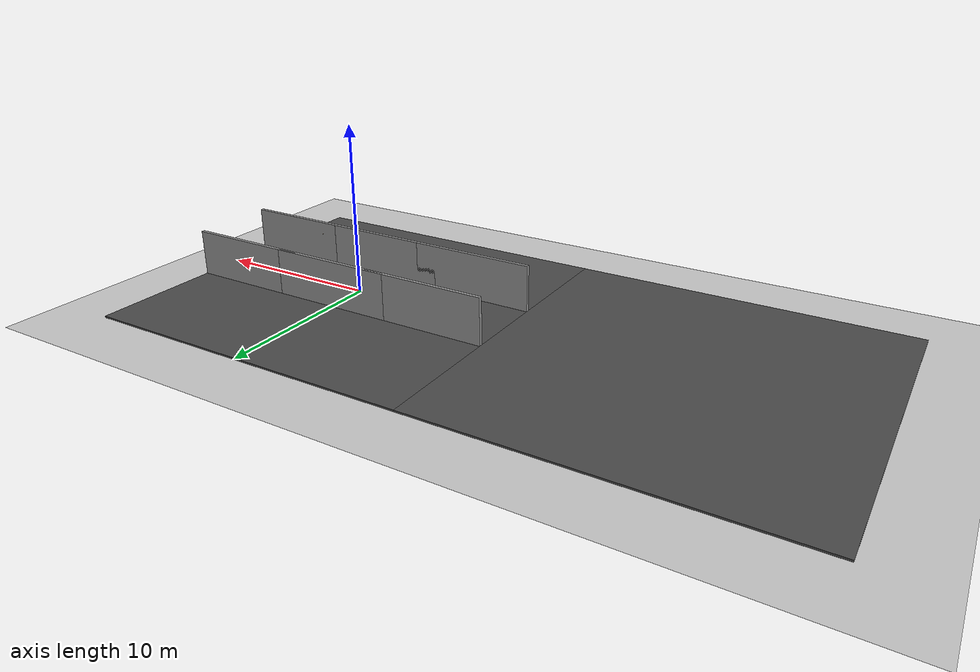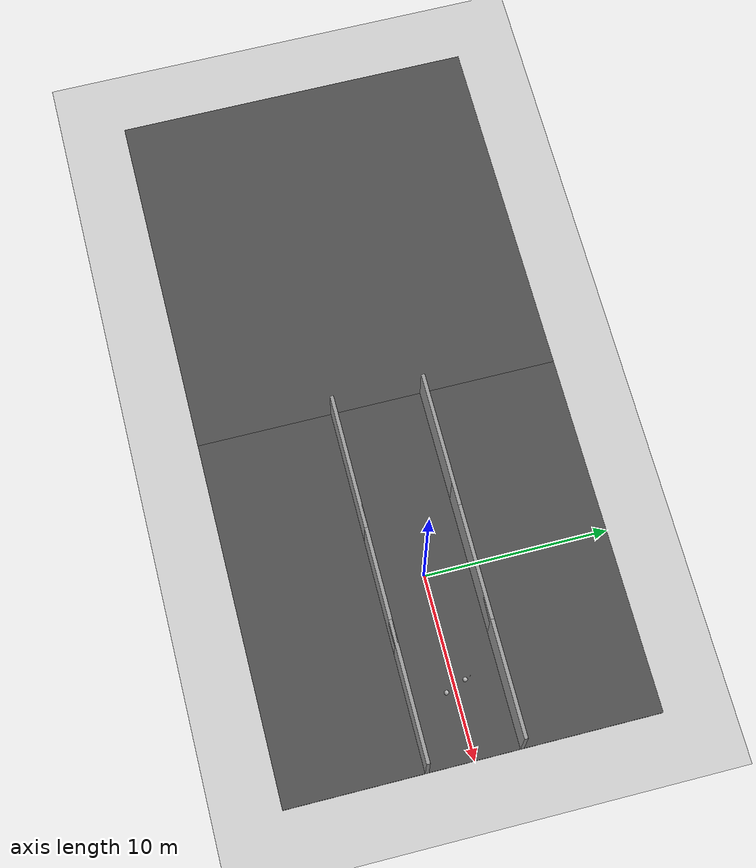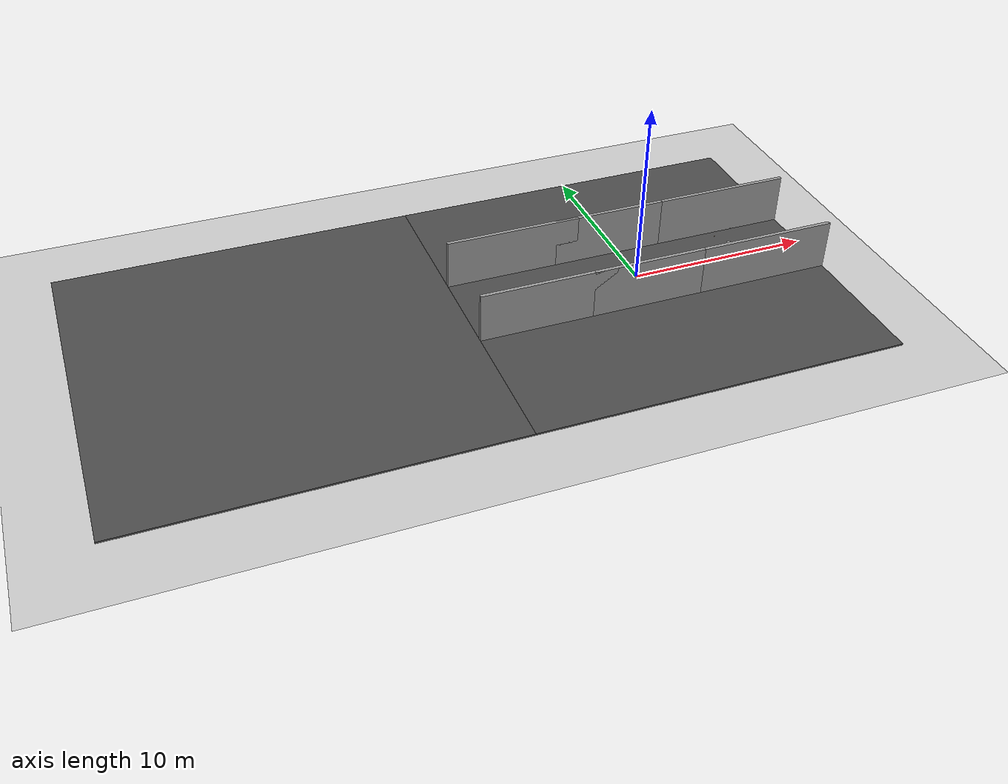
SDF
<sdf version="1.6">
 <world name="default">
  <model name="ground_plane">
   <static>1</static>
   <link name="link">
    <collision name="collision">
     <geometry><plane><normal>0 0 1</normal><size>100 100</size></plane></geometry>
     <surface><friction><ode><mu>100</mu><mu2>50</mu2></ode></friction></surface>
    </collision>
    <visual name="visual">
     <cast_shadows>0</cast_shadows>
     <geometry><plane><normal>0 0 1</normal><size>100 100</size></plane></geometry>
     <material>
      <script><uri>file://media/materials/scripts/gazebo.material</uri><name>Gazebo/Grey</name></script>
     </material>
    </visual>
   </link>
  </model>
  <model name="asphalt_plane">
   <static>1</static>
   <link name="link">
    <collision name="collision"><geometry><box><size>20 20 0.1</size></box></geometry></collision>
    <visual name="visual">
     <cast_shadows>0</cast_shadows>
     <geometry><box><size>20 20 0.1</size></box></geometry>
     <material>
      <script>
       <uri>model://asphalt_plane/materials/scripts</uri>
       <uri>model://asphalt_plane/materials/textures</uri>
       <name>vrc/asphalt</name>
      </script>
     </material>
    </visual>
   </link>
  </model>
  <model name="grey_wall">
   <static>1</static>
   <link name="link">
    <pose>0 0 1.4 0 -0 0</pose>
    <collision name="collision"><geometry><box><size>7.5 0.2 2.8</size></box></geometry></collision>
    <visual name="visual">
     <cast_shadows>0</cast_shadows>
     <geometry><box><size>7.5 0.2 2.8</size></box></geometry>
     <material>
      <script>
       <uri>model://grey_wall/materials/scripts</uri>
       <uri>model://grey_wall/materials/textures</uri>
       <name>vrc/grey_wall</name>
      </script>
     </material>
    </visual>
   </link>
   <pose>-6.25 2.5 0 0 -0 0</pose>
  </model>
  <model name="grey_wall_clone">
   <static>1</static>
   <link name="link">
    <pose>0 0 1.4 0 -0 0</pose>
    <collision name="collision"><geometry><box><size>7.5 0.2 2.8</size></box></geometry></collision>
    <visual name="visual">
     <cast_shadows>0</cast_shadows>
     <geometry><box><size>7.5 0.2 2.8</size></box></geometry>
     <material>
      <script>
       <uri>model://grey_wall/materials/scripts</uri>
       <uri>model://grey_wall/materials/textures</uri>
       <name>vrc/grey_wall</name>
      </script>
     </material>
    </visual>
   </link>
   <pose>0 2.5 0 0 -0 0</pose>
  </model>
  <model name="grey_wall_clone_0">
   <static>1</static>
   <link name="link">
    <pose>0 0 1.4 0 -0 0</pose>
    <collision name="collision"><geometry><box><size>7.5 0.2 2.8</size></box></geometry></collision>
    <visual name="visual">
     <cast_shadows>0</cast_shadows>
     <geometry><box><size>7.5 0.2 2.8</size></box></geometry>
     <material>
      <script>
       <uri>model://grey_wall/materials/scripts</uri>
       <uri>model://grey_wall/materials/textures</uri>
       <name>vrc/grey_wall</name>
      </script>
     </material>
    </visual>
   </link>
   <pose>-6.25 -2.5 0 0 -0 0</pose>
  </model>
  <model name="grey_wall_clone_1">
   <static>1</static>
   <link name="link">
    <pose>0 0 1.4 0 -0 0</pose>
    <collision name="collision"><geometry><box><size>7.5 0.2 2.8</size></box></geometry></collision>
    <visual name="visual">
     <cast_shadows>0</cast_shadows>
     <geometry><box><size>7.5 0.2 2.8</size></box></geometry>
     <material>
      <script>
       <uri>model://grey_wall/materials/scripts</uri>
       <uri>model://grey_wall/materials/textures</uri>
       <name>vrc/grey_wall</name>
      </script>
     </material>
    </visual>
   </link>
   <pose>6.25 2.5 0 0 -0 0</pose>
  </model>
  <model name="grey_wall_clone_2">
   <static>1</static>
   <link name="link">
    <pose>0 0 1.4 0 -0 0</pose>
    <collision name="collision"><geometry><box><size>7.5 0.2 2.8</size></box></geometry></collision>
    <visual name="visual">
     <cast_shadows>0</cast_shadows>
     <geometry><box><size>7.5 0.2 2.8</size></box></geometry>
     <material>
      <script>
       <uri>model://grey_wall/materials/scripts</uri>
       <uri>model://grey_wall/materials/textures</uri>
       <name>vrc/grey_wall</name>
      </script>
     </material>
    </visual>
   </link>
   <pose>0 -2.5 0 0 -0 0</pose>
  </model>
  <model name="grey_wall_clone_3">
   <static>1</static>
   <link name="link">
    <pose>0 0 1.4 0 -0 0</pose>
    <collision name="collision"><geometry><box><size>7.5 0.2 2.8</size></box></geometry></collision>
    <visual name="visual">
     <cast_shadows>0</cast_shadows>
     <geometry><box><size>7.5 0.2 2.8</size></box></geometry>
     <material>
      <script>
       <uri>model://grey_wall/materials/scripts</uri>
       <uri>model://grey_wall/materials/textures</uri>
       <name>vrc/grey_wall</name>
      </script>
     </material>
    </visual>
   </link>
   <pose>6.25 -2.5 0 0 -0 0</pose>
  </model>
  <model name="asphalt_plane_clone">
   <static>1</static>
   <link name="link">
    <collision name="collision"><geometry><box><size>20 20 0.1</size></box></geometry></collision>
    <visual name="visual">
     <cast_shadows>0</cast_shadows>
     <geometry><box><size>20 20 0.1</size></box></geometry>
     <material>
      <script>
       <uri>model://asphalt_plane/materials/scripts</uri>
       <uri>model://asphalt_plane/materials/textures</uri>
       <name>vrc/asphalt</name>
      </script>
     </material>
    </visual>
   </link>
   <pose>-20 0 0 0 -0 0</pose>
  </model>
  <model name="wooden_peg">
   <link name="link">
    <pose>0 0 0.04 0 -0 0</pose>
    <inertial>
     <mass>0.0175</mass>
     <inertia>
      <ixx>9.74923e-06</ixx>
      <ixy>0</ixy>
      <ixz>0</ixz>
      <iyy>9.74923e-06</iyy>
      <iyz>0</iyz>
      <izz>8.31797e-07</izz>
     </inertia>
    </inertial>
    <collision name="collision">
     <geometry><cylinder><radius>0.00975</radius><length>0.08</length></cylinder></geometry>
     <surface>
      <contact>
       <poissons_ratio>0.347</poissons_ratio>
       <elastic_modulus>8.8e+09</elastic_modulus>
       <ode><kp>100000</kp><kd>100</kd><max_vel>100</max_vel><min_depth>0.001</min_depth></ode>
      </contact>
      <friction>
       <torsional>
        <coefficient>1</coefficient>
        <use_patch_radius>0</use_patch_radius>
        <surface_radius>0.01</surface_radius>
       </torsional>
      </friction>
     </surface>
    </collision>
    <visual name="visual">
     <geometry><cylinder><radius>0.00975</radius><length>0.08</length></cylinder></geometry>
     <material>
      <script><uri>file://media/materials/scripts/gazebo.material</uri><name>Gazebo/Wood</name></script>
     </material>
    </visual>
   </link>
   <pose>3.75825 -1.28354 2.51775 -0 -0.518504 -0.13956</pose>
  </model>
  <model name="stone_10_2_5_1cm">
   <link name="link">
    <pose>0 0 0.005 0 -0 0</pose>
    <inertial>
     <mass>0.0628</mass>
     <inertia>
      <ixx>3.79417e-06</ixx>
      <ixy>0</ixy>
      <ixz>0</ixz>
      <iyy>5.28567e-05</iyy>
      <iyz>0</iyz>
      <izz>5.56042e-05</izz>
     </inertia>
    </inertial>
    <collision name="collision">
     <geometry><box><size>0.1 0.025 0.01</size></box></geometry>
     <surface>
      <contact>
       <poissons_ratio>0.15</poissons_ratio>
       <elastic_modulus>8e+10</elastic_modulus>
       <ode><kp>100000</kp><kd>100</kd><max_vel>100</max_vel><min_depth>0.001</min_depth></ode>
      </contact>
      <friction>
       <torsional>
        <coefficient>1</coefficient>
        <use_patch_radius>0</use_patch_radius>
        <surface_radius>0.01</surface_radius>
       </torsional>
      </friction>
     </surface>
    </collision>
    <visual name="visual">
     <geometry><box><size>0.1 0.025 0.01</size></box></geometry>
     <material>
      <script><uri>file://media/materials/scripts/gazebo.material</uri><name>Gazebo/Grey</name></script>
     </material>
    </visual>
   </link>
   <pose>5.99357 0.803386 1.2732 0 -0 0</pose>
  </model>
  <model name="frc2016_ball_clone">
   <pose>5.93015 0.586815 0.442433 0 -0 0</pose>
   <link name="link">
    <inertial>
     <mass>0.213</mass>
     <inertia>
      <ixx>0.00322667</ixx>
      <ixy>0</ixy>
      <ixz>0</ixz>
      <iyy>0.00322667</iyy>
      <iyz>0</iyz>
      <izz>0.00322667</izz>
     </inertia>
    </inertial>
    <visual name="visual"><geometry><sphere><radius>0.127</radius></sphere></geometry></visual>
    <collision name="collision">
     <geometry><sphere><radius>0.127</radius></sphere></geometry>
     <surface>
      <bounce><restitution_coefficient>0.15937</restitution_coefficient><threshold>0</threshold></bounce>
      <contact><ode><max_vel>100</max_vel><min_depth>0.001</min_depth></ode></contact>
     </surface>
    </collision>
   </link>
  </model>
  <model name="frc2016_ball_clone_1">
   <pose>6.34991 -0.513097 0.442433 0 -0 0</pose>
   <link name="link">
    <inertial>
     <mass>0.213</mass>
     <inertia>
      <ixx>0.00322667</ixx>
      <ixy>0</ixy>
      <ixz>0</ixz>
      <iyy>0.00322667</iyy>
      <iyz>0</iyz>
      <izz>0.00322667</izz>
     </inertia>
    </inertial>
    <visual name="visual"><geometry><sphere><radius>0.127</radius></sphere></geometry></visual>
    <collision name="collision">
     <geometry><sphere><radius>0.127</radius></sphere></geometry>
     <surface>
      <bounce><restitution_coefficient>0.15937</restitution_coefficient><threshold>0</threshold></bounce>
      <contact><ode><max_vel>100</max_vel><min_depth>0.001</min_depth></ode></contact>
     </surface>
    </collision>
   </link>
  </model>
 </world>
</sdf>
